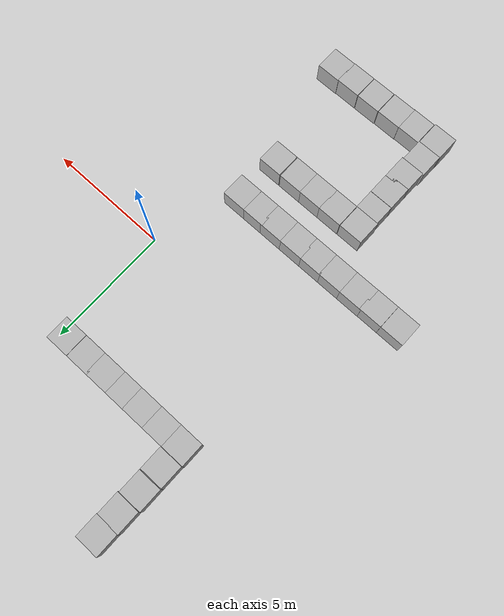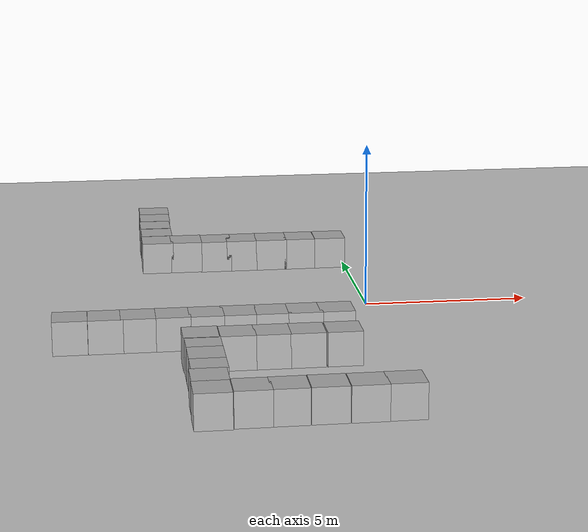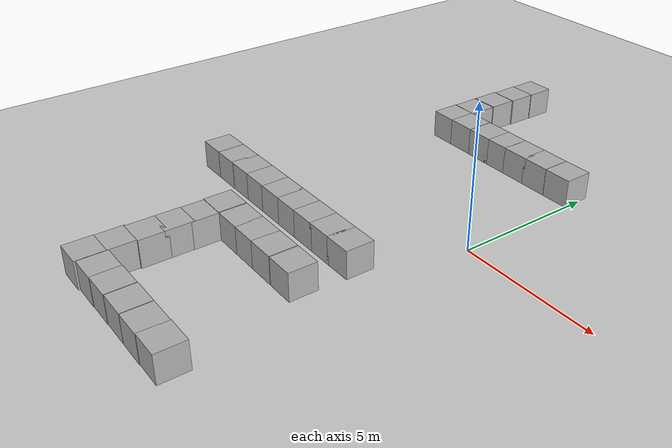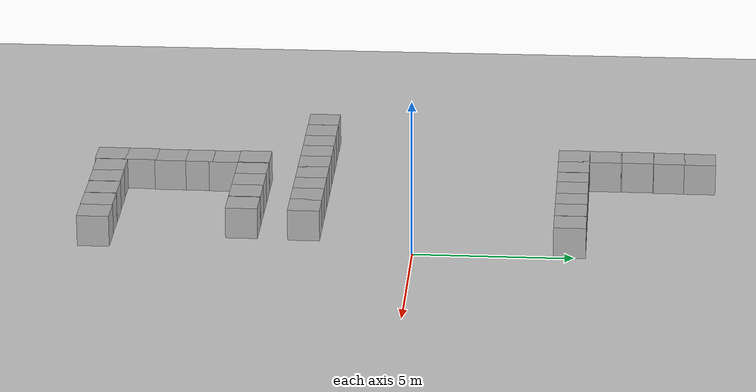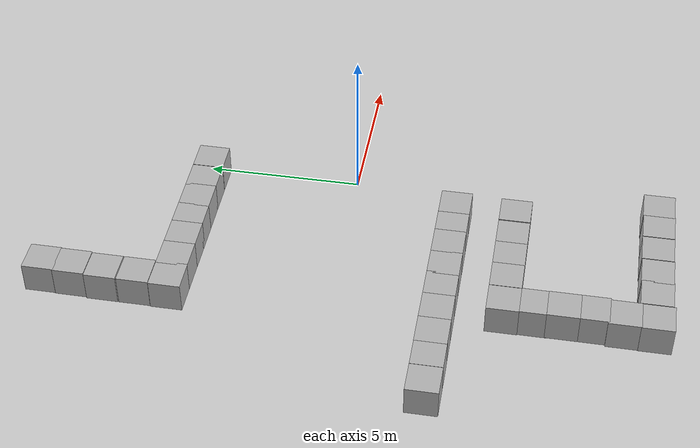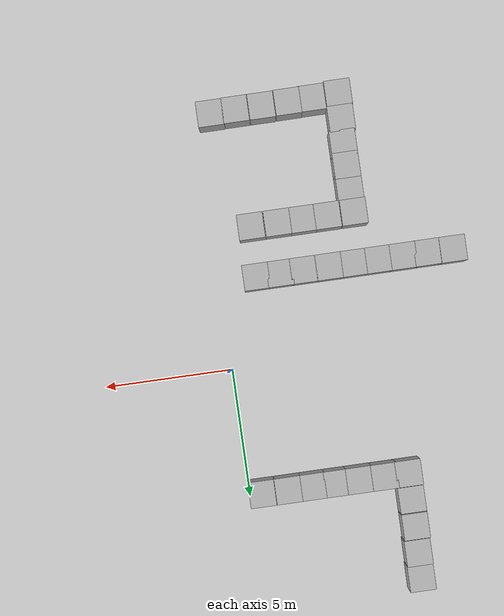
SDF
<sdf version="1.10">
 <world name="empty">
  <model name="ground_plane">
   <static>true</static>
   <link name="link">
    <collision name="collision">
     <geometry><plane><normal>0 0 1</normal><size>100 100</size></plane></geometry>
    </collision>
    <visual name="visual">
     <geometry><plane><normal>0 0 1</normal><size>100 100</size></plane></geometry>
     <material>
      <ambient>0.800000012 0.800000012 0.800000012 1</ambient>
      <diffuse>0.800000012 0.800000012 0.800000012 1</diffuse>
      <specular>0.800000012 0.800000012 0.800000012 1</specular>
     </material>
    </visual>
    <inertial>
     <mass>1</mass>
     <inertia><ixx>1</ixx><ixy>0</ixy><ixz>0</ixz><iyy>1</iyy><iyz>0</iyz><izz>1</izz></inertia>
    </inertial>
   </link>
  </model>
  <model name="box_0">
   <pose>-1.437559962272644 -3.4321799278259277 0.5 0 0 0</pose>
   <link name="box_link">
    <inertial>
     <inertia><ixx>0.16666</ixx><ixy>0</ixy><ixz>0</ixz><iyy>0.16666</iyy><iyz>0</iyz><izz>0.16666</izz></inertia>
     <mass>1</mass>
    </inertial>
    <collision name="box_collision"><geometry><box><size>1 1 1</size></box></geometry></collision>
    <visual name="box_visual">
     <geometry><box><size>1 1 1</size></box></geometry>
     <material>
      <ambient>0.300000012 0.300000012 0.300000012 1</ambient>
      <diffuse>0.699999988 0.699999988 0.699999988 1</diffuse>
      <specular>1 1 1 1</specular>
     </material>
    </visual>
   </link>
   <static>true</static>
  </model>
  <model name="box_1">
   <pose>-2.3603498935699463 -3.4321799278259277 0.5 0 0 0</pose>
   <link name="box_link">
    <inertial>
     <inertia><ixx>0.16666</ixx><ixy>0</ixy><ixz>0</ixz><iyy>0.16666</iyy><iyz>0</iyz><izz>0.16666</izz></inertia>
     <mass>1</mass>
    </inertial>
    <collision name="box_collision"><geometry><box><size>1 1 1</size></box></geometry></collision>
    <visual name="box_visual">
     <geometry><box><size>1 1 1</size></box></geometry>
     <material>
      <ambient>0.300000012 0.300000012 0.300000012 1</ambient>
      <diffuse>0.699999988 0.699999988 0.699999988 1</diffuse>
      <specular>1 1 1 1</specular>
     </material>
    </visual>
   </link>
   <static>true</static>
  </model>
  <model name="box_2">
   <pose>-3.2832300662994385 -3.4321799278259277 0.5 0 0 0</pose>
   <link name="box_link">
    <inertial>
     <inertia><ixx>0.16666</ixx><ixy>0</ixy><ixz>0</ixz><iyy>0.16666</iyy><iyz>0</iyz><izz>0.16666</izz></inertia>
     <mass>1</mass>
    </inertial>
    <collision name="box_collision"><geometry><box><size>1 1 1</size></box></geometry></collision>
    <visual name="box_visual">
     <geometry><box><size>1 1 1</size></box></geometry>
     <material>
      <ambient>0.300000012 0.300000012 0.300000012 1</ambient>
      <diffuse>0.699999988 0.699999988 0.699999988 1</diffuse>
      <specular>1 1 1 1</specular>
     </material>
    </visual>
   </link>
   <static>true</static>
  </model>
  <model name="box_3">
   <pose>-4.2610697746276855 -3.4321799278259277 0.5 0 0 0</pose>
   <link name="box_link">
    <inertial>
     <inertia><ixx>0.16666</ixx><ixy>0</ixy><ixz>0</ixz><iyy>0.16666</iyy><iyz>0</iyz><izz>0.16666</izz></inertia>
     <mass>1</mass>
    </inertial>
    <collision name="box_collision"><geometry><box><size>1 1 1</size></box></geometry></collision>
    <visual name="box_visual">
     <geometry><box><size>1 1 1</size></box></geometry>
     <material>
      <ambient>0.300000012 0.300000012 0.300000012 1</ambient>
      <diffuse>0.699999988 0.699999988 0.699999988 1</diffuse>
      <specular>1 1 1 1</specular>
     </material>
    </visual>
   </link>
   <static>true</static>
  </model>
  <model name="box_4">
   <pose>-5.1977601051330566 -3.4321799278259277 0.5 0 0 0</pose>
   <link name="box_link">
    <inertial>
     <inertia><ixx>0.16666</ixx><ixy>0</ixy><ixz>0</ixz><iyy>0.16666</iyy><iyz>0</iyz><izz>0.16666</izz></inertia>
     <mass>1</mass>
    </inertial>
    <collision name="box_collision"><geometry><box><size>1 1 1</size></box></geometry></collision>
    <visual name="box_visual">
     <geometry><box><size>1 1 1</size></box></geometry>
     <material>
      <ambient>0.300000012 0.300000012 0.300000012 1</ambient>
      <diffuse>0.699999988 0.699999988 0.699999988 1</diffuse>
      <specular>1 1 1 1</specular>
     </material>
    </visual>
   </link>
   <static>true</static>
  </model>
  <model name="box_5">
   <pose>-6.1482501029968262 -3.4321799278259277 0.5 0 0 0</pose>
   <link name="box_link">
    <inertial>
     <inertia><ixx>0.16666</ixx><ixy>0</ixy><ixz>0</ixz><iyy>0.16666</iyy><iyz>0</iyz><izz>0.16666</izz></inertia>
     <mass>1</mass>
    </inertial>
    <collision name="box_collision"><geometry><box><size>1 1 1</size></box></geometry></collision>
    <visual name="box_visual">
     <geometry><box><size>1 1 1</size></box></geometry>
     <material>
      <ambient>0.300000012 0.300000012 0.300000012 1</ambient>
      <diffuse>0.699999988 0.699999988 0.699999988 1</diffuse>
      <specular>1 1 1 1</specular>
     </material>
    </visual>
   </link>
   <static>true</static>
  </model>
  <model name="box_6">
   <pose>-7.1462202072143555 -3.4321799278259277 0.5 0 0 0</pose>
   <link name="box_link">
    <inertial>
     <inertia><ixx>0.16666</ixx><ixy>0</ixy><ixz>0</ixz><iyy>0.16666</iyy><iyz>0</iyz><izz>0.16666</izz></inertia>
     <mass>1</mass>
    </inertial>
    <collision name="box_collision"><geometry><box><size>1 1 1</size></box></geometry></collision>
    <visual name="box_visual">
     <geometry><box><size>1 1 1</size></box></geometry>
     <material>
      <ambient>0.300000012 0.300000012 0.300000012 1</ambient>
      <diffuse>0.699999988 0.699999988 0.699999988 1</diffuse>
      <specular>1 1 1 1</specular>
     </material>
    </visual>
   </link>
   <static>true</static>
  </model>
  <model name="box_7">
   <pose>-8.0709496915400525 -3.4372660996707891 0.5 0 0 0</pose>
   <link name="box_link">
    <inertial>
     <inertia><ixx>0.16666</ixx><ixy>0</ixy><ixz>0</ixz><iyy>0.16666</iyy><iyz>0</iyz><izz>0.16666</izz></inertia>
     <mass>1</mass>
    </inertial>
    <collision name="box_collision"><geometry><box><size>1 1 1</size></box></geometry></collision>
    <visual name="box_visual">
     <geometry><box><size>1 1 1</size></box></geometry>
     <material>
      <ambient>0.300000012 0.300000012 0.300000012 1</ambient>
      <diffuse>0.699999988 0.699999988 0.699999988 1</diffuse>
      <specular>1 1 1 1</specular>
     </material>
    </visual>
   </link>
   <static>true</static>
  </model>
  <model name="box_8">
   <pose>-9.0756287588108506 -3.4372660640371873 0.5 0 0 0</pose>
   <link name="box_link">
    <inertial>
     <inertia><ixx>0.16666</ixx><ixy>0</ixy><ixz>0</ixz><iyy>0.16666</iyy><iyz>0</iyz><izz>0.16666</izz></inertia>
     <mass>1</mass>
    </inertial>
    <collision name="box_collision"><geometry><box><size>1 1 1</size></box></geometry></collision>
    <visual name="box_visual">
     <geometry><box><size>1 1 1</size></box></geometry>
     <material>
      <ambient>0.300000012 0.300000012 0.300000012 1</ambient>
      <diffuse>0.699999988 0.699999988 0.699999988 1</diffuse>
      <specular>1 1 1 1</specular>
     </material>
    </visual>
   </link>
   <static>true</static>
  </model>
  <model name="box_13">
   <pose>-1.5068099498748779 -5.3775200843811035 0.5 0 0 0</pose>
   <link name="box_link">
    <inertial>
     <inertia><ixx>0.16666</ixx><ixy>0</ixy><ixz>0</ixz><iyy>0.16666</iyy><iyz>0</iyz><izz>0.16666</izz></inertia>
     <mass>1</mass>
    </inertial>
    <collision name="box_collision"><geometry><box><size>1 1 1</size></box></geometry></collision>
    <visual name="box_visual">
     <geometry><box><size>1 1 1</size></box></geometry>
     <material>
      <ambient>0.300000012 0.300000012 0.300000012 1</ambient>
      <diffuse>0.699999988 0.699999988 0.699999988 1</diffuse>
      <specular>1 1 1 1</specular>
     </material>
    </visual>
   </link>
   <static>true</static>
  </model>
  <model name="box_14">
   <pose>-2.5399200916290283 -5.3775200843811035 0.5 0 0 0</pose>
   <link name="box_link">
    <inertial>
     <inertia><ixx>0.16666</ixx><ixy>0</ixy><ixz>0</ixz><iyy>0.16666</iyy><iyz>0</iyz><izz>0.16666</izz></inertia>
     <mass>1</mass>
    </inertial>
    <collision name="box_collision"><geometry><box><size>1 1 1</size></box></geometry></collision>
    <visual name="box_visual">
     <geometry><box><size>1 1 1</size></box></geometry>
     <material>
      <ambient>0.300000012 0.300000012 0.300000012 1</ambient>
      <diffuse>0.699999988 0.699999988 0.699999988 1</diffuse>
      <specular>1 1 1 1</specular>
     </material>
    </visual>
   </link>
   <static>true</static>
  </model>
  <model name="box_15">
   <pose>-3.5179600715637207 -5.3775200843811035 0.5 0 0 0</pose>
   <link name="box_link">
    <inertial>
     <inertia><ixx>0.16666</ixx><ixy>0</ixy><ixz>0</ixz><iyy>0.16666</iyy><iyz>0</iyz><izz>0.16666</izz></inertia>
     <mass>1</mass>
    </inertial>
    <collision name="box_collision"><geometry><box><size>1 1 1</size></box></geometry></collision>
    <visual name="box_visual">
     <geometry><box><size>1 1 1</size></box></geometry>
     <material>
      <ambient>0.300000012 0.300000012 0.300000012 1</ambient>
      <diffuse>0.699999988 0.699999988 0.699999988 1</diffuse>
      <specular>1 1 1 1</specular>
     </material>
    </visual>
   </link>
   <static>true</static>
  </model>
  <model name="box_11">
   <pose>-4.4819397926330566 -5.3775200843811035 0.5 0 0 0</pose>
   <link name="box_link">
    <inertial>
     <inertia><ixx>0.16666</ixx><ixy>0</ixy><ixz>0</ixz><iyy>0.16666</iyy><iyz>0</iyz><izz>0.16666</izz></inertia>
     <mass>1</mass>
    </inertial>
    <collision name="box_collision"><geometry><box><size>1 1 1</size></box></geometry></collision>
    <visual name="box_visual">
     <geometry><box><size>1 1 1</size></box></geometry>
     <material>
      <ambient>0.300000012 0.300000012 0.300000012 1</ambient>
      <diffuse>0.699999988 0.699999988 0.699999988 1</diffuse>
      <specular>1 1 1 1</specular>
     </material>
    </visual>
   </link>
   <static>true</static>
  </model>
  <model name="box_16">
   <pose>-5.5012998580932617 -5.3775200843811035 0.51010000705718994 0 0 0</pose>
   <link name="box_link">
    <inertial>
     <inertia><ixx>0.16666</ixx><ixy>0</ixy><ixz>0</ixz><iyy>0.16666</iyy><iyz>0</iyz><izz>0.16666</izz></inertia>
     <mass>1</mass>
    </inertial>
    <collision name="box_collision"><geometry><box><size>1 1 1</size></box></geometry></collision>
    <visual name="box_visual">
     <geometry><box><size>1 1 1</size></box></geometry>
     <material>
      <ambient>0.300000012 0.300000012 0.300000012 1</ambient>
      <diffuse>0.699999988 0.699999988 0.699999988 1</diffuse>
      <specular>1 1 1 1</specular>
     </material>
    </visual>
   </link>
   <static>true</static>
  </model>
  <model name="box_17">
   <pose>-5.4737473399962955 -6.3141155514986824 0.5 0 0 0</pose>
   <link name="box_link">
    <inertial>
     <inertia><ixx>0.16666</ixx><ixy>0</ixy><ixz>0</ixz><iyy>0.16666</iyy><iyz>0</iyz><izz>0.16666</izz></inertia>
     <mass>1</mass>
    </inertial>
    <collision name="box_collision"><geometry><box><size>1 1 1</size></box></geometry></collision>
    <visual name="box_visual">
     <geometry><box><size>1 1 1</size></box></geometry>
     <material>
      <ambient>0.300000012 0.300000012 0.300000012 1</ambient>
      <diffuse>0.699999988 0.699999988 0.699999988 1</diffuse>
      <specular>1 1 1 1</specular>
     </material>
    </visual>
   </link>
   <static>true</static>
  </model>
  <model name="box_18">
   <pose>-5.473750114440918 -7.1958298683166504 0.51010000705718994 0 0 0</pose>
   <link name="box_link">
    <inertial>
     <inertia><ixx>0.16666</ixx><ixy>0</ixy><ixz>0</ixz><iyy>0.16666</iyy><iyz>0</iyz><izz>0.16666</izz></inertia>
     <mass>1</mass>
    </inertial>
    <collision name="box_collision"><geometry><box><size>1 1 1</size></box></geometry></collision>
    <visual name="box_visual">
     <geometry><box><size>1 1 1</size></box></geometry>
     <material>
      <ambient>0.300000012 0.300000012 0.300000012 1</ambient>
      <diffuse>0.699999988 0.699999988 0.699999988 1</diffuse>
      <specular>1 1 1 1</specular>
     </material>
    </visual>
   </link>
   <static>true</static>
  </model>
  <model name="box_19">
   <pose>-5.473750114440918 -8.0638999938964844 0.51010000705718994 0 0 0</pose>
   <link name="box_link">
    <inertial>
     <inertia><ixx>0.16666</ixx><ixy>0</ixy><ixz>0</ixz><iyy>0.16666</iyy><iyz>0</iyz><izz>0.16666</izz></inertia>
     <mass>1</mass>
    </inertial>
    <collision name="box_collision"><geometry><box><size>1 1 1</size></box></geometry></collision>
    <visual name="box_visual">
     <geometry><box><size>1 1 1</size></box></geometry>
     <material>
      <ambient>0.300000012 0.300000012 0.300000012 1</ambient>
      <diffuse>0.699999988 0.699999988 0.699999988 1</diffuse>
      <specular>1 1 1 1</specular>
     </material>
    </visual>
   </link>
   <static>true</static>
  </model>
  <model name="box_20">
   <pose>-5.5288400650024414 -9.0141401290893555 0.51010000705718994 0 0 0</pose>
   <link name="box_link">
    <inertial>
     <inertia><ixx>0.16666</ixx><ixy>0</ixy><ixz>0</ixz><iyy>0.16666</iyy><iyz>0</iyz><izz>0.16666</izz></inertia>
     <mass>1</mass>
    </inertial>
    <collision name="box_collision"><geometry><box><size>1 1 1</size></box></geometry></collision>
    <visual name="box_visual">
     <geometry><box><size>1 1 1</size></box></geometry>
     <material>
      <ambient>0.300000012 0.300000012 0.300000012 1</ambient>
      <diffuse>0.699999988 0.699999988 0.699999988 1</diffuse>
      <specular>1 1 1 1</specular>
     </material>
    </visual>
   </link>
   <static>true</static>
  </model>
  <model name="box_21">
   <pose>-5.5426301956176758 -9.992340087890625 0.51010000705718994 0 0 0</pose>
   <link name="box_link">
    <inertial>
     <inertia><ixx>0.16666</ixx><ixy>0</ixy><ixz>0</ixz><iyy>0.16666</iyy><iyz>0</iyz><izz>0.16666</izz></inertia>
     <mass>1</mass>
    </inertial>
    <collision name="box_collision"><geometry><box><size>1 1 1</size></box></geometry></collision>
    <visual name="box_visual">
     <geometry><box><size>1 1 1</size></box></geometry>
     <material>
      <ambient>0.300000012 0.300000012 0.300000012 1</ambient>
      <diffuse>0.699999988 0.699999988 0.699999988 1</diffuse>
      <specular>1 1 1 1</specular>
     </material>
    </visual>
   </link>
   <static>true</static>
  </model>
  <model name="box_12">
   <pose>-4.5232601165771484 -9.9371004104614258 0.51010000705718994 0 0 0</pose>
   <link name="box_link">
    <inertial>
     <inertia><ixx>0.16666</ixx><ixy>0</ixy><ixz>0</ixz><iyy>0.16666</iyy><iyz>0</iyz><izz>0.16666</izz></inertia>
     <mass>1</mass>
    </inertial>
    <collision name="box_collision"><geometry><box><size>1 1 1</size></box></geometry></collision>
    <visual name="box_visual">
     <geometry><box><size>1 1 1</size></box></geometry>
     <material>
      <ambient>0.300000012 0.300000012 0.300000012 1</ambient>
      <diffuse>0.699999988 0.699999988 0.699999988 1</diffuse>
      <specular>1 1 1 1</specular>
     </material>
    </visual>
   </link>
   <static>true</static>
  </model>
  <model name="box_22">
   <pose>-3.5727999210357666 -9.9234695434570312 0.51010000705718994 0 0 0</pose>
   <link name="box_link">
    <inertial>
     <inertia><ixx>0.16666</ixx><ixy>0</ixy><ixz>0</ixz><iyy>0.16666</iyy><iyz>0</iyz><izz>0.16666</izz></inertia>
     <mass>1</mass>
    </inertial>
    <collision name="box_collision"><geometry><box><size>1 1 1</size></box></geometry></collision>
    <visual name="box_visual">
     <geometry><box><size>1 1 1</size></box></geometry>
     <material>
      <ambient>0.300000012 0.300000012 0.300000012 1</ambient>
      <diffuse>0.699999988 0.699999988 0.699999988 1</diffuse>
      <specular>1 1 1 1</specular>
     </material>
    </visual>
   </link>
   <static>true</static>
  </model>
  <model name="box_23">
   <pose>-2.5534501075744629 -9.9101800918579102 0.51010000705718994 0 0 0</pose>
   <link name="box_link">
    <inertial>
     <inertia><ixx>0.16666</ixx><ixy>0</ixy><ixz>0</ixz><iyy>0.16666</iyy><iyz>0</iyz><izz>0.16666</izz></inertia>
     <mass>1</mass>
    </inertial>
    <collision name="box_collision"><geometry><box><size>1 1 1</size></box></geometry></collision>
    <visual name="box_visual">
     <geometry><box><size>1 1 1</size></box></geometry>
     <material>
      <ambient>0.300000012 0.300000012 0.300000012 1</ambient>
      <diffuse>0.699999988 0.699999988 0.699999988 1</diffuse>
      <specular>1 1 1 1</specular>
     </material>
    </visual>
   </link>
   <static>true</static>
  </model>
  <model name="box_24">
   <pose>-1.5340800285339355 -9.9101800918579102 0.51010000705718994 0 0 0</pose>
   <link name="box_link">
    <inertial>
     <inertia><ixx>0.16666</ixx><ixy>0</ixy><ixz>0</ixz><iyy>0.16666</iyy><iyz>0</iyz><izz>0.16666</izz></inertia>
     <mass>1</mass>
    </inertial>
    <collision name="box_collision"><geometry><box><size>1 1 1</size></box></geometry></collision>
    <visual name="box_visual">
     <geometry><box><size>1 1 1</size></box></geometry>
     <material>
      <ambient>0.300000012 0.300000012 0.300000012 1</ambient>
      <diffuse>0.699999988 0.699999988 0.699999988 1</diffuse>
      <specular>1 1 1 1</specular>
     </material>
    </visual>
   </link>
   <static>true</static>
  </model>
  <model name="box_25">
   <pose>-0.5560610294342041 -9.8955001831054688 0.51010000705718994 0 0 0</pose>
   <link name="box_link">
    <inertial>
     <inertia><ixx>0.16666</ixx><ixy>0</ixy><ixz>0</ixz><iyy>0.16666</iyy><iyz>0</iyz><izz>0.16666</izz></inertia>
     <mass>1</mass>
    </inertial>
    <collision name="box_collision"><geometry><box><size>1 1 1</size></box></geometry></collision>
    <visual name="box_visual">
     <geometry><box><size>1 1 1</size></box></geometry>
     <material>
      <ambient>0.300000012 0.300000012 0.300000012 1</ambient>
      <diffuse>0.699999988 0.699999988 0.699999988 1</diffuse>
      <specular>1 1 1 1</specular>
     </material>
    </visual>
   </link>
   <static>true</static>
  </model>
  <model name="box_31">
   <pose>-0.5070679783821106 4.8519802093505859 0.5 0 0 0</pose>
   <link name="box_link">
    <inertial>
     <inertia><ixx>0.16666</ixx><ixy>0</ixy><ixz>0</ixz><iyy>0.16666</iyy><iyz>0</iyz><izz>0.16666</izz></inertia>
     <mass>1</mass>
    </inertial>
    <collision name="box_collision"><geometry><box><size>1 1 1</size></box></geometry></collision>
    <visual name="box_visual">
     <geometry><box><size>1 1 1</size></box></geometry>
     <material>
      <ambient>0.300000012 0.300000012 0.300000012 1</ambient>
      <diffuse>0.699999988 0.699999988 0.699999988 1</diffuse>
      <specular>1 1 1 1</specular>
     </material>
    </visual>
   </link>
   <static>true</static>
  </model>
  <model name="box_32">
   <pose>-1.5186699628829956 4.8519802093505859 0.5 0 0 0</pose>
   <link name="box_link">
    <inertial>
     <inertia><ixx>0.16666</ixx><ixy>0</ixy><ixz>0</ixz><iyy>0.16666</iyy><iyz>0</iyz><izz>0.16666</izz></inertia>
     <mass>1</mass>
    </inertial>
    <collision name="box_collision"><geometry><box><size>1 1 1</size></box></geometry></collision>
    <visual name="box_visual">
     <geometry><box><size>1 1 1</size></box></geometry>
     <material>
      <ambient>0.300000012 0.300000012 0.300000012 1</ambient>
      <diffuse>0.699999988 0.699999988 0.699999988 1</diffuse>
      <specular>1 1 1 1</specular>
     </material>
    </visual>
   </link>
   <static>true</static>
  </model>
  <model name="box_33">
   <pose>-2.450930118560791 4.8519802093505859 0.5 0 0 0</pose>
   <link name="box_link">
    <inertial>
     <inertia><ixx>0.16666</ixx><ixy>0</ixy><ixz>0</ixz><iyy>0.16666</iyy><iyz>0</iyz><izz>0.16666</izz></inertia>
     <mass>1</mass>
    </inertial>
    <collision name="box_collision"><geometry><box><size>1 1 1</size></box></geometry></collision>
    <visual name="box_visual">
     <geometry><box><size>1 1 1</size></box></geometry>
     <material>
      <ambient>0.300000012 0.300000012 0.300000012 1</ambient>
      <diffuse>0.699999988 0.699999988 0.699999988 1</diffuse>
      <specular>1 1 1 1</specular>
     </material>
    </visual>
   </link>
   <static>true</static>
  </model>
  <model name="box_34">
   <pose>-3.4228301048278809 4.8519802093505859 0.5 0 0 0</pose>
   <link name="box_link">
    <inertial>
     <inertia><ixx>0.16666</ixx><ixy>0</ixy><ixz>0</ixz><iyy>0.16666</iyy><iyz>0</iyz><izz>0.16666</izz></inertia>
     <mass>1</mass>
    </inertial>
    <collision name="box_collision"><geometry><box><size>1 1 1</size></box></geometry></collision>
    <visual name="box_visual">
     <geometry><box><size>1 1 1</size></box></geometry>
     <material>
      <ambient>0.300000012 0.300000012 0.300000012 1</ambient>
      <diffuse>0.699999988 0.699999988 0.699999988 1</diffuse>
      <specular>1 1 1 1</specular>
     </material>
    </visual>
   </link>
   <static>true</static>
  </model>
  <model name="box_35">
   <pose>-4.2757401466369629 4.8519802093505859 0.5 0 0 0</pose>
   <link name="box_link">
    <inertial>
     <inertia><ixx>0.16666</ixx><ixy>0</ixy><ixz>0</ixz><iyy>0.16666</iyy><iyz>0</iyz><izz>0.16666</izz></inertia>
     <mass>1</mass>
    </inertial>
    <collision name="box_collision"><geometry><box><size>1 1 1</size></box></geometry></collision>
    <visual name="box_visual">
     <geometry><box><size>1 1 1</size></box></geometry>
     <material>
      <ambient>0.300000012 0.300000012 0.300000012 1</ambient>
      <diffuse>0.699999988 0.699999988 0.699999988 1</diffuse>
      <specular>1 1 1 1</specular>
     </material>
    </visual>
   </link>
   <static>true</static>
  </model>
  <model name="box_36">
   <pose>-5.2476401329040527 4.8519802093505859 0.51010000705718994 0 0 0</pose>
   <link name="box_link">
    <inertial>
     <inertia><ixx>0.16666</ixx><ixy>0</ixy><ixz>0</ixz><iyy>0.16666</iyy><iyz>0</iyz><izz>0.16666</izz></inertia>
     <mass>1</mass>
    </inertial>
    <collision name="box_collision"><geometry><box><size>1 1 1</size></box></geometry></collision>
    <visual name="box_visual">
     <geometry><box><size>1 1 1</size></box></geometry>
     <material>
      <ambient>0.300000012 0.300000012 0.300000012 1</ambient>
      <diffuse>0.699999988 0.699999988 0.699999988 1</diffuse>
      <specular>1 1 1 1</specular>
     </material>
    </visual>
   </link>
   <static>true</static>
  </model>
  <model name="box_37">
   <pose>-6.1798901557922363 4.8519802093505859 0.51010000705718994 0 0 0</pose>
   <link name="box_link">
    <inertial>
     <inertia><ixx>0.16666</ixx><ixy>0</ixy><ixz>0</ixz><iyy>0.16666</iyy><iyz>0</iyz><izz>0.16666</izz></inertia>
     <mass>1</mass>
    </inertial>
    <collision name="box_collision"><geometry><box><size>1 1 1</size></box></geometry></collision>
    <visual name="box_visual">
     <geometry><box><size>1 1 1</size></box></geometry>
     <material>
      <ambient>0.300000012 0.300000012 0.300000012 1</ambient>
      <diffuse>0.699999988 0.699999988 0.699999988 1</diffuse>
      <specular>1 1 1 1</specular>
     </material>
    </visual>
   </link>
   <static>true</static>
  </model>
  <model name="box_38">
   <pose>-6.1600699424743652 5.8628301620483398 0.51010000705718994 0 0 0</pose>
   <link name="box_link">
    <inertial>
     <inertia><ixx>0.16666</ixx><ixy>0</ixy><ixz>0</ixz><iyy>0.16666</iyy><iyz>0</iyz><izz>0.16666</izz></inertia>
     <mass>1</mass>
    </inertial>
    <collision name="box_collision"><geometry><box><size>1 1 1</size></box></geometry></collision>
    <visual name="box_visual">
     <geometry><box><size>1 1 1</size></box></geometry>
     <material>
      <ambient>0.300000012 0.300000012 0.300000012 1</ambient>
      <diffuse>0.699999988 0.699999988 0.699999988 1</diffuse>
      <specular>1 1 1 1</specular>
     </material>
    </visual>
   </link>
   <static>true</static>
  </model>
  <model name="box_39">
   <pose>-6.1600699424743652 6.8938198089599609 0.51010000705718994 0 0 0</pose>
   <link name="box_link">
    <inertial>
     <inertia><ixx>0.16666</ixx><ixy>0</ixy><ixz>0</ixz><iyy>0.16666</iyy><iyz>0</iyz><izz>0.16666</izz></inertia>
     <mass>1</mass>
    </inertial>
    <collision name="box_collision"><geometry><box><size>1 1 1</size></box></geometry></collision>
    <visual name="box_visual">
     <geometry><box><size>1 1 1</size></box></geometry>
     <material>
      <ambient>0.300000012 0.300000012 0.300000012 1</ambient>
      <diffuse>0.699999988 0.699999988 0.699999988 1</diffuse>
      <specular>1 1 1 1</specular>
     </material>
    </visual>
   </link>
   <static>true</static>
  </model>
  <model name="box_40">
   <pose>-6.1218199729919434 7.9072399139404297 0.51010000705718994 0 0 0</pose>
   <link name="box_link">
    <inertial>
     <inertia><ixx>0.16666</ixx><ixy>0</ixy><ixz>0</ixz><iyy>0.16666</iyy><iyz>0</iyz><izz>0.16666</izz></inertia>
     <mass>1</mass>
    </inertial>
    <collision name="box_collision"><geometry><box><size>1 1 1</size></box></geometry></collision>
    <visual name="box_visual">
     <geometry><box><size>1 1 1</size></box></geometry>
     <material>
      <ambient>0.300000012 0.300000012 0.300000012 1</ambient>
      <diffuse>0.699999988 0.699999988 0.699999988 1</diffuse>
      <specular>1 1 1 1</specular>
     </material>
    </visual>
   </link>
   <static>true</static>
  </model>
  <model name="box_41">
   <pose>-6.1019401550292969 8.8798303604125977 0.51010000705718994 0 0 0</pose>
   <link name="box_link">
    <inertial>
     <inertia><ixx>0.16666</ixx><ixy>0</ixy><ixz>0</ixz><iyy>0.16666</iyy><iyz>0</iyz><izz>0.16666</izz></inertia>
     <mass>1</mass>
    </inertial>
    <collision name="box_collision"><geometry><box><size>1 1 1</size></box></geometry></collision>
    <visual name="box_visual">
     <geometry><box><size>1 1 1</size></box></geometry>
     <material>
      <ambient>0.300000012 0.300000012 0.300000012 1</ambient>
      <diffuse>0.699999988 0.699999988 0.699999988 1</diffuse>
      <specular>1 1 1 1</specular>
     </material>
    </visual>
   </link>
   <static>true</static>
  </model>
 </world>
</sdf>
